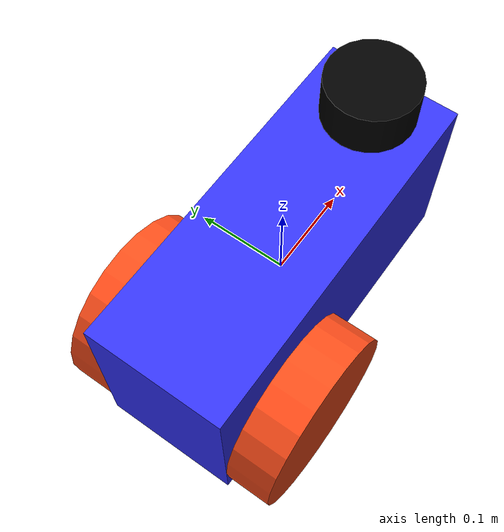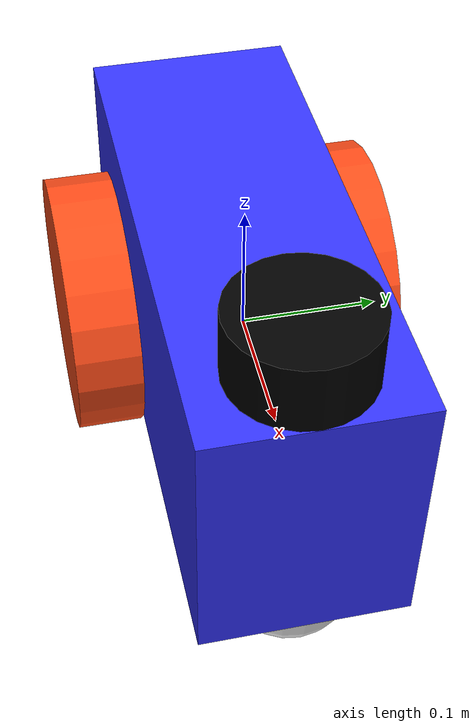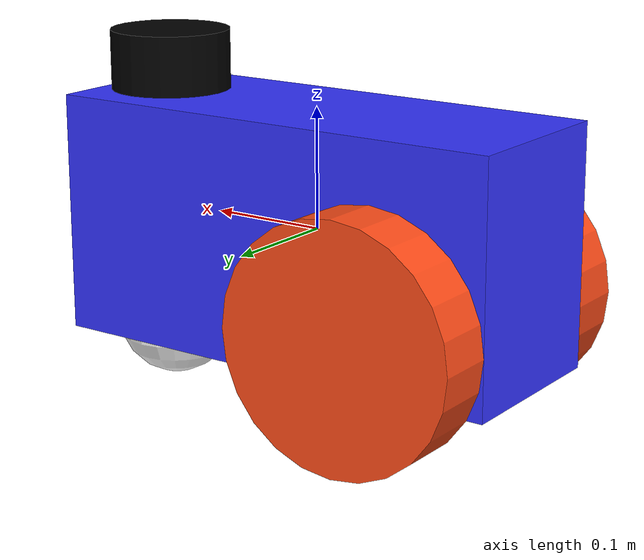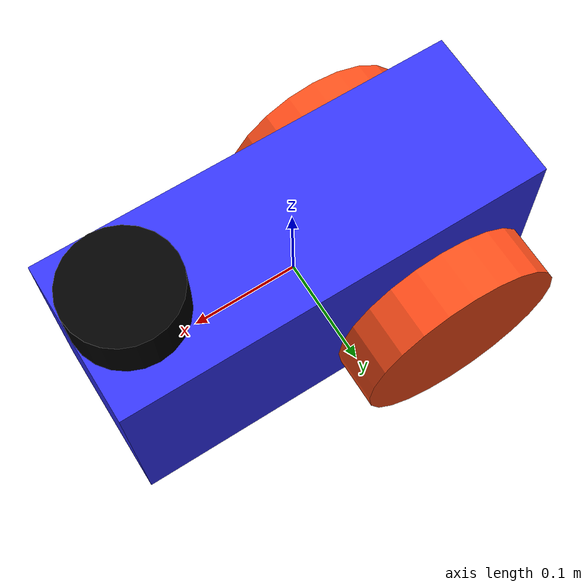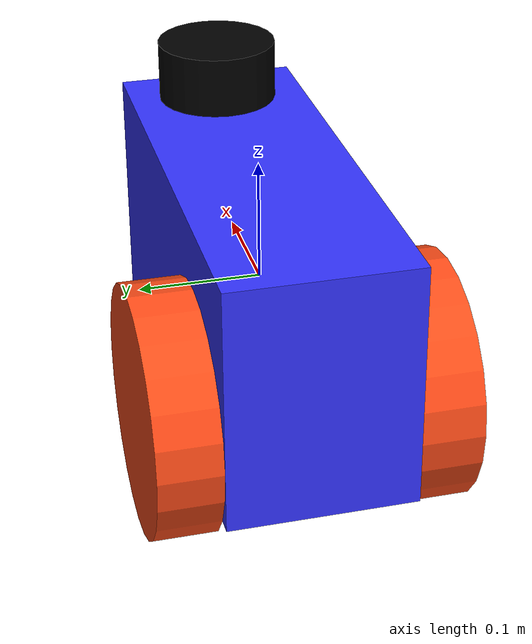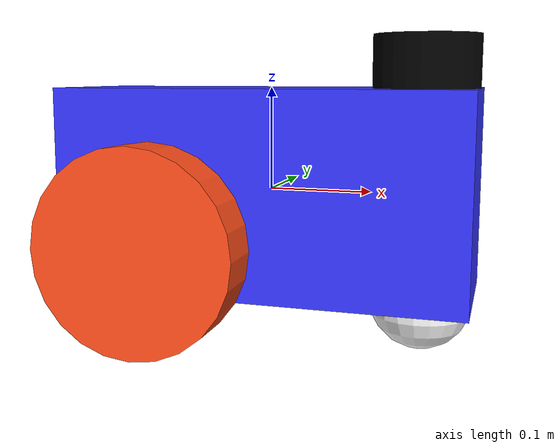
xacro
<?xml version="1.0"?>
<robot name="tank" xmlns:xacro="http://www.ros.org/wiki/xacro">

    <xacro:include filename="inertial_macros.xacro"/>
        <!-- Differential Drive Controller -->
    <xacro:property name="chassis_length" value="0.4"/>
    <xacro:property name="chassis_width" value="0.15"/>
    <xacro:property name="chassis_height" value="0.2"/>

    <xacro:property name="wheel_radius" value="0.05"/>
    <xacro:property name="wheel_length" value="0.05"/>
    <xacro:property name="wheel_thickness" value="0.026"/>
    <xacro:property name="wheel_separation" value="${chassis_width}"/>
    <xacro:property name="wheel_mass" value="0.1"/>

    <xacro:property name="lidar_mass" value="0.01"/>
    <xacro:property name="lidar_height" value="0.05"/>
    <xacro:property name="lidar_radius" value="0.05"/>

    <xacro:property name="caster_wheel_offset_x" value="${(chassis_length/2)-0.05}"/>
    <xacro:property name="caster_wheel_offset_z" value="${-(chassis_height/2)}"/>
    <xacro:property name="caster_wheel_radius" value="${lidar_radius}"/>
    <xacro:property name="caster_wheel_mass" value="0.1"/>

    <material name="white">
        <color rgba="1 1 1 1" />
    </material>

    <material name="orange">
        <color rgba="1 0.3 0.1 1"/>
    </material>

    <material name="blue">
        <color rgba="0.2 0.2 1 1"/>
    </material>

    <material name="black">
        <color rgba="0 0 0 1"/>
    </material>

    <material name="red">
        <color rgba="1 0 0 1"/>
    </material>

    <!-- BASE LINK -->

    <link name="base_link">

    </link>

    <!-- Base Link -->
    <link name="chassis_link">
        <visual>
            <geometry>
                <box size="${chassis_length} ${chassis_width} ${chassis_height}"/>
            </geometry>
            <material name="blue"/>
        </visual>
        <collision>
            <geometry>
                <box size="${chassis_length} ${chassis_width} ${chassis_height}"/>
            </geometry>
        </collision>

        <xacro:inertial_box mass="2.0" x="${chassis_length}" y="${chassis_width}" z="${chassis_height}">
            <origin xyz="$0 0 ${chassis_height}" rpy="0 0 0"/>
        </xacro:inertial_box>
    </link>

    <joint name="base_chassis_joint" type="fixed">
        <parent link="base_link"/>
        <child link="chassis_link"/>
        <origin xyz="0 0 0"/>
        <axis xyz="0 0 0"/>
    </joint>

    <!-- CASTER WHEEL LINK -->

    <joint name="caster_wheel_joint" type="fixed">
        <parent link="chassis_link"/>
        <child link="caster_wheel"/>
        <origin xyz="${caster_wheel_offset_x} 0 ${caster_wheel_offset_z}"/>
    </joint>

    <link name="caster_wheel">
        <visual>
            <geometry>
                <sphere radius="${caster_wheel_radius}"/>
            </geometry>
            <material name="white"/>
        </visual>
        <collision>
            <geometry>
                <sphere radius="${caster_wheel_radius}"/>
            </geometry>
        </collision>
        <xacro:inertial_sphere mass="${caster_wheel_mass}" radius="${caster_wheel_radius}">
            <origin xyz="0 0 0" rpy="0 0 0"/>
        </xacro:inertial_sphere>
    </link>

    <gazebo reference="caster_wheel">
        <material>Gazebo/White</material>
        <mu1 value="0.001"/>
        <mu2 value="0.001"/>
    </gazebo>

    <!-- Wheels -->
    <joint name="left_wheel_joint" type="continuous">
        <parent link="chassis_link"/>
        <child link="left_wheel"/>
        <origin xyz="${-chassis_length/4} ${-(wheel_separation/2) - (wheel_length/2)} -${((chassis_height/2)-wheel_radius)}" rpy="${-pi/2} 0 0"/>
        <axis xyz="0 0 1"/>
    </joint>
    <link name="left_wheel">
        <visual>
            <geometry>
                <cylinder length="${wheel_length}" radius="${wheel_radius*2}"/>
            </geometry>
            <material name="orange"/>
        </visual>
        <collision>
            <geometry>
                <cylinder length="${wheel_length}" radius="${wheel_radius*2}"/>
            </geometry>
        </collision>
        <xacro:inertial_cylinder mass="${wheel_mass}" length="${wheel_thickness}" radius="${wheel_radius}">
            <origin xyz="0 0 0" rpy="0 0 0"/>
        </xacro:inertial_cylinder>
    </link>

    <joint name="right_wheel_joint" type="continuous">
        <parent link="chassis_link"/>
        <child link="right_wheel"/>
        <origin xyz="${-chassis_length/4} ${(wheel_separation/2) + (wheel_length/2)} -${((chassis_height/2)-wheel_radius)}" rpy="${-pi/2} 0 0"/>
        <axis xyz="0 0 1"/>
    </joint>
    <link name="right_wheel">
        <visual>
            <geometry>
                <cylinder length="${wheel_length}" radius="${wheel_radius*2}"/>
            </geometry>
            <material name="orange"/>
        </visual>
        <collision>
            <geometry>
                <cylinder length="${wheel_length}" radius="${wheel_radius*2}"/>
            </geometry>
        </collision>
        <xacro:inertial_cylinder mass="${wheel_mass}" length="${wheel_thickness}" radius="${wheel_radius}">
            <origin xyz="0 0 0" rpy="0 0 0"/>
        </xacro:inertial_cylinder>
    </link>

    <!-- LiDAR -->
    <xacro:include filename="lidar.xacro" />
    <!-- Gazebo control -->
    <xacro:include filename="gazebo_control.xacro" />

</robot>

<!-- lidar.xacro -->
<robot xmlns:xacro="http://www.ros.org/wiki/xacro" >

   <joint name="laser_joint" type="fixed">
        <parent link="chassis_link"/>
        <child link="laser_frame"/>
        <origin xyz="${(chassis_length/2)-lidar_radius} 0 ${(chassis_height/2)+(lidar_height/2)}"/>
    </joint>

    <link name="laser_frame">
        <visual>
            <geometry>
                <cylinder length="${lidar_height}" radius="${lidar_radius}"/>
            </geometry>
            <material name="black"/>
        </visual>
        <collision>
            <geometry>
                <cylinder length="${lidar_height}" radius="${lidar_radius}"/>
            </geometry>
        </collision>
        <xacro:inertial_cylinder mass="${lidar_mass}" length="${lidar_height}" radius="${lidar_radius}">
            <origin xyz="0 0 0" rpy="0 0 0"/>
        </xacro:inertial_cylinder>
    </link>

    <gazebo reference="laser_frame">
        <material>Gazebo/Black</material>

        <sensor name="laser" type="gpu_lidar">
            <pose> 0 0 0 0 0 0 </pose>
            <visualize>false</visualize>
            <update_rate>10</update_rate>
            <lidar>
                <scan>
                    <horizontal>
                        <samples>360</samples>
                        <min_angle>-3.14</min_angle>
                        <max_angle>3.14</max_angle>
                    </horizontal>
                </scan>
                <range>
                    <min>0.3</min>
                    <max>12</max>
                </range>
            </lidar>
            <topic>scan</topic>
            <gz_frame_id>laser_frame</gz_frame_id>
        </sensor>
    </gazebo>

</robot>
